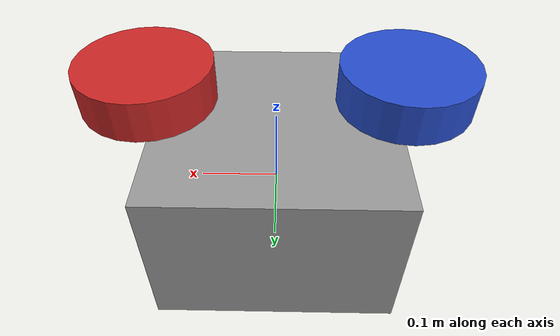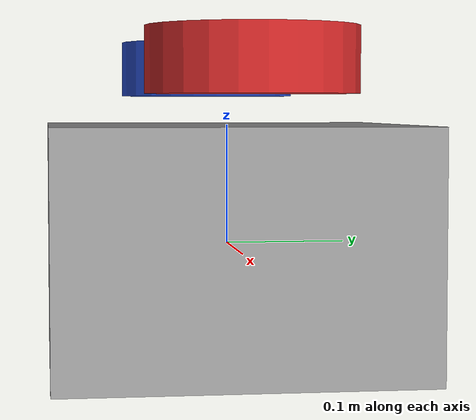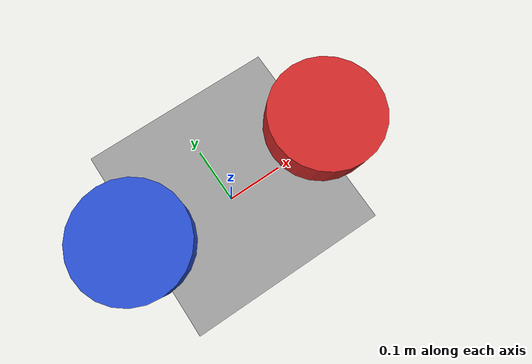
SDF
<?xml version="1.0"?>
<sdf version="1.4">
  <model name="robot_with_markers">
    <!-- Main robot body (simple box) -->
    <link name="base_link">
      <collision name="collision">
        <geometry>
          <box>
            <size>0.3 0.3 0.2</size>
          </box>
        </geometry>
      </collision>
      <visual name="visual">
        <geometry>
          <box>
            <size>0.3 0.3 0.2</size>
          </box>
        </geometry>
        <material>
          <script>
            <name>Gazebo/Grey</name>
            <uri>file://media/materials/scripts/gazebo.material</uri>
          </script>
        </material>
      </visual>
      <inertial>
        <mass>1.0</mass>
        <inertia>
          <ixx>0.01</ixx>
          <iyy>0.01</iyy>
          <izz>0.01</izz>
        </inertia>
      </inertial>
    </link>

    <!-- Red marker (head/front) -->
    <link name="red_marker_link">
      <visual name="red_marker_visual">
        <pose>0.15 0 0.15 0 0 0</pose> <!-- Выше и ближе к центру для лучшей видимости сверху -->
        <geometry>
          <cylinder>
            <radius>0.08</radius>
            <length>0.05</length>
          </cylinder>
        </geometry>
        <material>
          <script>
            <name>Gazebo/Red</name>
            <uri>file://media/materials/scripts/gazebo.material</uri>
          </script>
        </material>
      </visual>
      <collision name="red_marker_collision">
        <pose>0.15 0 0.15 0 0 0</pose>
        <geometry>
          <cylinder>
            <radius>0.08</radius>
            <length>0.05</length>
          </cylinder>
        </geometry>
      </collision>
      <inertial>
        <mass>0.01</mass>
        <inertia>
          <ixx>0.0001</ixx>
          <iyy>0.0001</iyy>
          <izz>0.0001</izz>
        </inertia>
      </inertial>
    </link>

    <!-- Blue marker (tail/back) -->
    <link name="blue_marker_link">
      <visual name="blue_marker_visual">
        <pose>-0.15 0 0.15 0 0 0</pose> <!-- Выше и ближе к центру для лучшей видимости сверху -->
        <geometry>
          <cylinder>
            <radius>0.08</radius>
            <length>0.05</length>
          </cylinder>
        </geometry>
        <material>
          <script>
            <name>Gazebo/Blue</name>
            <uri>file://media/materials/scripts/gazebo.material</uri>
          </script>
        </material>
      </visual>
      <collision name="blue_marker_collision">
        <pose>-0.15 0 0.15 0 0 0</pose>
        <geometry>
          <cylinder>
            <radius>0.08</radius>
            <length>0.05</length>
          </cylinder>
        </geometry>
      </collision>
      <inertial>
        <mass>0.01</mass>
        <inertia>
          <ixx>0.0001</ixx>
          <iyy>0.0001</iyy>
          <izz>0.0001</izz>
        </inertia>
      </inertial>
    </link>

    <!-- Joints connecting markers to base -->
    <joint name="red_marker_joint" type="fixed">
      <parent>base_link</parent>
      <child>red_marker_link</child>
    </joint>

    <joint name="blue_marker_joint" type="fixed">
      <parent>base_link</parent>
      <child>blue_marker_link</child>
    </joint>

    <!-- Planar move plugin: drives base_link using /cmd_vel -->
    <plugin name="planar_move" filename="libgazebo_ros_planar_move.so">
      <ros>
        <namespace>/</namespace>
      </ros>
      <bodyName>base_link</bodyName>
      <topicName>cmd_vel</topicName>
      <maxForce>10</maxForce>
      <maxTorque>10</maxTorque>
      <xyzOffsets>0 0 0</xyzOffsets>
      <rpyOffsets>0 0 0</rpyOffsets>
    </plugin>
    </model>
</sdf>
